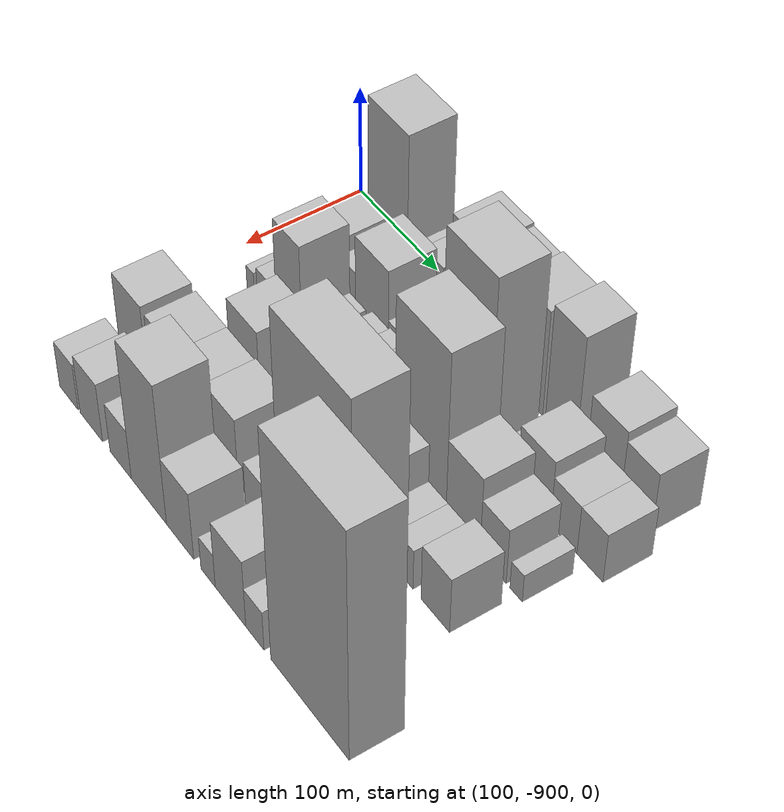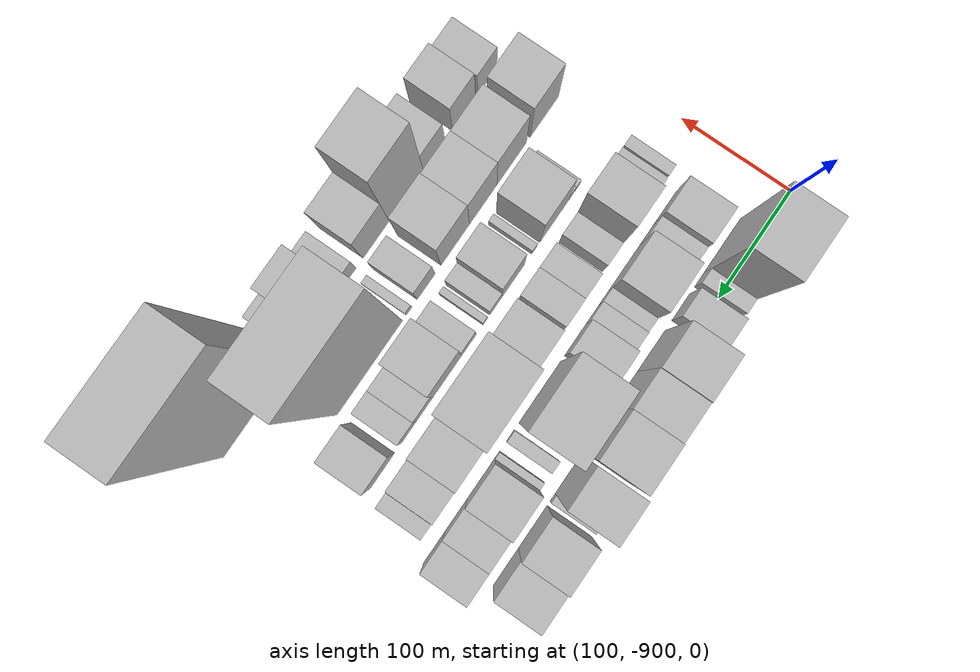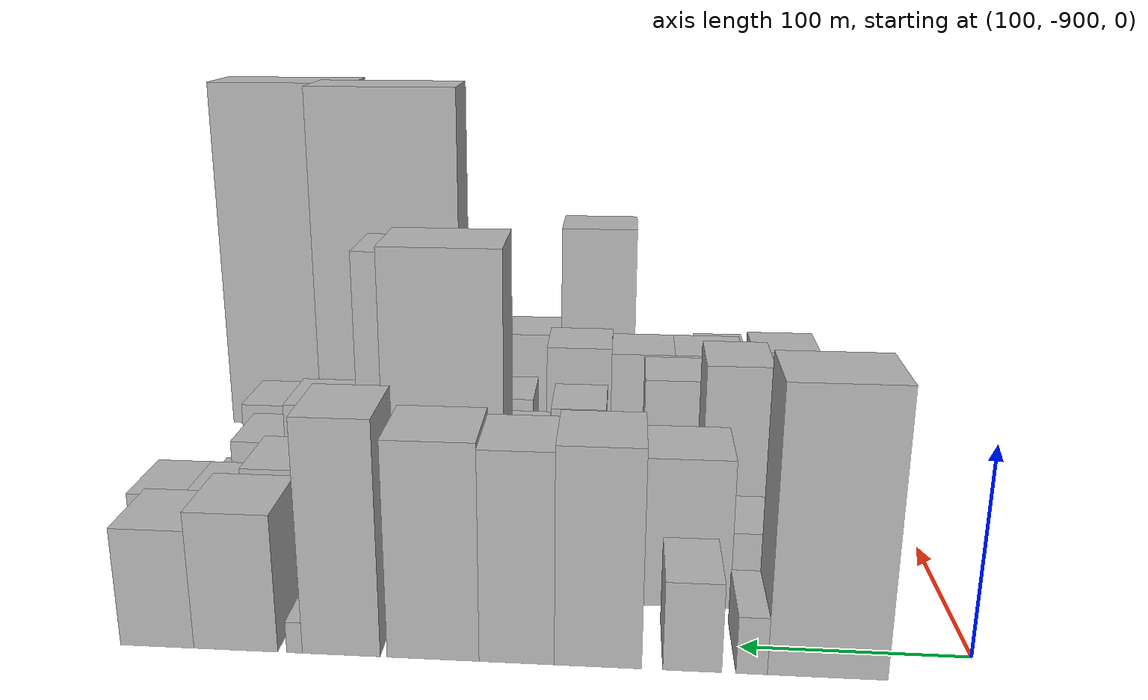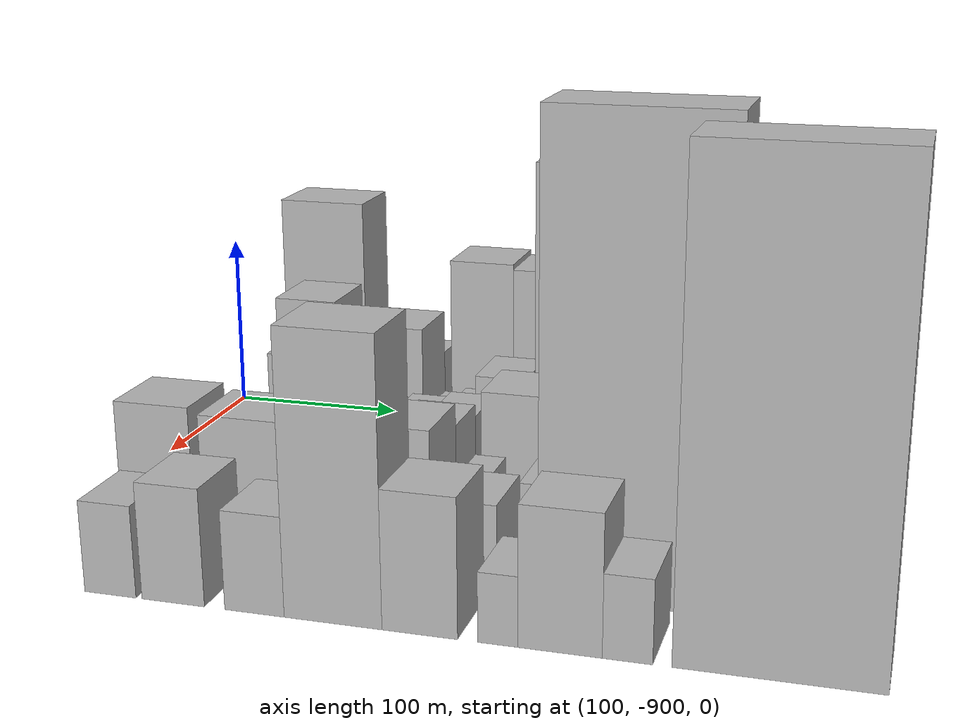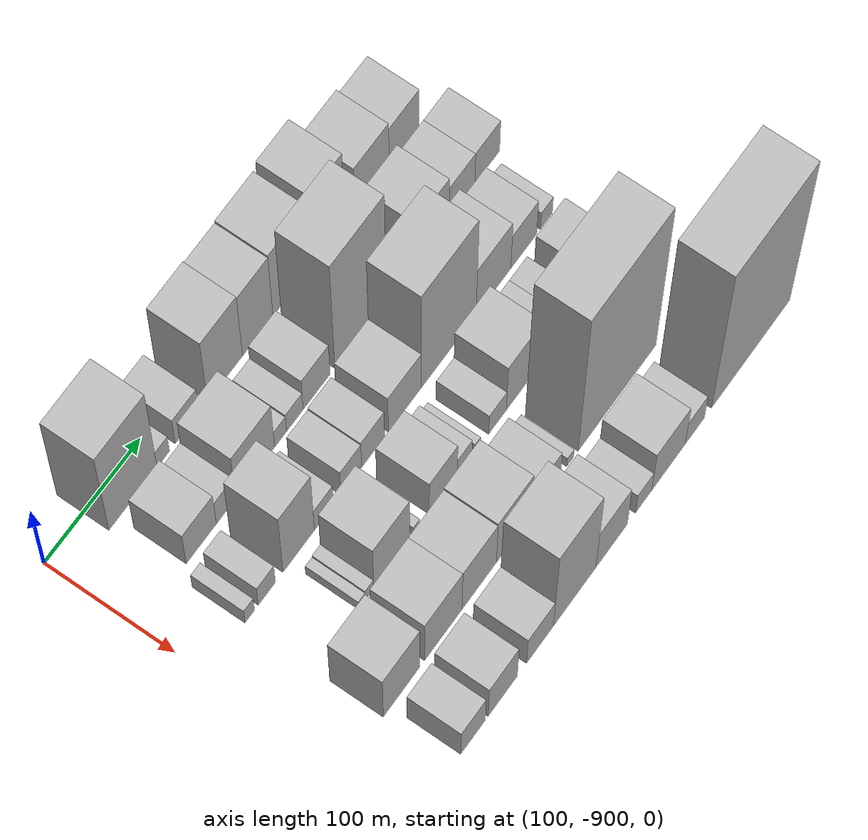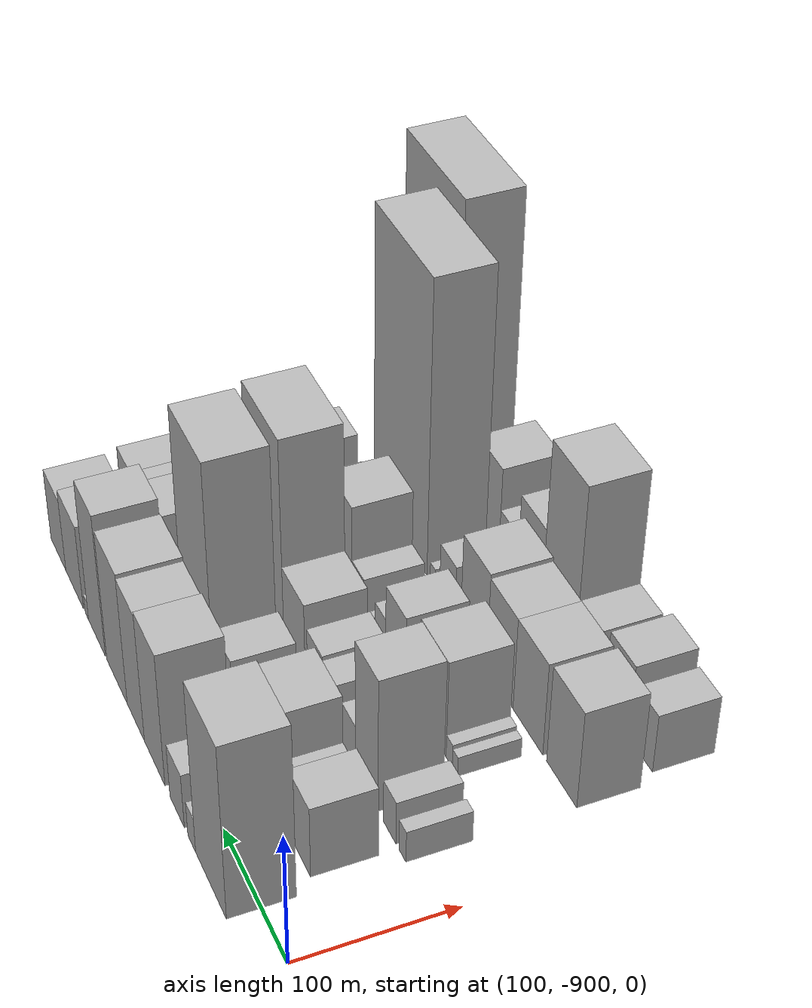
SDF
<sdf version="1.6">
 <world name="default">
  <model name="building_1">
   <static>1</static>
   <pose>100.0000 -834.8855 0 0.000000 0.000000 0.000000</pose>
   <link name="link">
    <pose>0 0 66.00 0 0 0</pose>
    <collision name="collision"><geometry><box><size>40.0000 50.2289 132.0000</size></box></geometry></collision>
    <visual name="visual">
     <cast_shadows>0</cast_shadows>
     <geometry><box><size>40.0000 50.2289 132.0000</size></box></geometry>
     <material>
      <script>
       <uri>model://HANNAS_wall/materials/scripts</uri>
       <uri>model://HANNAS_wall/materials/textures</uri>
       <name>vrc/HANNAS_wall</name>
      </script>
     </material>
    </visual>
   </link>
  </model>
  <model name="building_2">
   <static>1</static>
   <pose>100.0000 -803.1771 0 0.000000 0.000000 0.000000</pose>
   <link name="link">
    <pose>0 0 13.50 0 0 0</pose>
    <collision name="collision"><geometry><box><size>40.0000 13.1880 27.0000</size></box></geometry></collision>
    <visual name="visual">
     <cast_shadows>0</cast_shadows>
     <geometry><box><size>40.0000 13.1880 27.0000</size></box></geometry>
     <material>
      <script>
       <uri>model://HANNAS_wall/materials/scripts</uri>
       <uri>model://HANNAS_wall/materials/textures</uri>
       <name>vrc/HANNAS_wall</name>
      </script>
     </material>
    </visual>
   </link>
  </model>
  <model name="building_3">
   <static>1</static>
   <pose>100.0000 -778.1001 0 0.000000 0.000000 0.000000</pose>
   <link name="link">
    <pose>0 0 21.00 0 0 0</pose>
    <collision name="collision"><geometry><box><size>40.0000 24.9659 42.0000</size></box></geometry></collision>
    <visual name="visual">
     <cast_shadows>0</cast_shadows>
     <geometry><box><size>40.0000 24.9659 42.0000</size></box></geometry>
     <material>
      <script>
       <uri>model://HANNAS_wall/materials/scripts</uri>
       <uri>model://HANNAS_wall/materials/textures</uri>
       <name>vrc/HANNAS_wall</name>
      </script>
     </material>
    </visual>
   </link>
  </model>
  <model name="building_4">
   <static>1</static>
   <pose>100.0000 -737.8932 0 0.000000 0.000000 0.000000</pose>
   <link name="link">
    <pose>0 0 51.00 0 0 0</pose>
    <collision name="collision"><geometry><box><size>40.0000 37.4479 102.0000</size></box></geometry></collision>
    <visual name="visual">
     <cast_shadows>0</cast_shadows>
     <geometry><box><size>40.0000 37.4479 102.0000</size></box></geometry>
     <material>
      <script>
       <uri>model://HANNAS_wall/materials/scripts</uri>
       <uri>model://HANNAS_wall/materials/textures</uri>
       <name>vrc/HANNAS_wall</name>
      </script>
     </material>
    </visual>
   </link>
  </model>
  <model name="building_5">
   <static>1</static>
   <pose>100.0000 -702.8747 0 0.000000 0.000000 0.000000</pose>
   <link name="link">
    <pose>0 0 49.50 0 0 0</pose>
    <collision name="collision"><geometry><box><size>40.0000 32.5892 99.0000</size></box></geometry></collision>
    <visual name="visual">
     <cast_shadows>0</cast_shadows>
     <geometry><box><size>40.0000 32.5892 99.0000</size></box></geometry>
     <material>
      <script>
       <uri>model://HANNAS_wall/materials/scripts</uri>
       <uri>model://HANNAS_wall/materials/textures</uri>
       <name>vrc/HANNAS_wall</name>
      </script>
     </material>
    </visual>
   </link>
  </model>
  <model name="building_6">
   <static>1</static>
   <pose>100.0000 -666.4119 0 0.000000 0.000000 0.000000</pose>
   <link name="link">
    <pose>0 0 51.00 0 0 0</pose>
    <collision name="collision"><geometry><box><size>40.0000 40.3364 102.0000</size></box></geometry></collision>
    <visual name="visual">
     <cast_shadows>0</cast_shadows>
     <geometry><box><size>40.0000 40.3364 102.0000</size></box></geometry>
     <material>
      <script>
       <uri>model://HANNAS_wall/materials/scripts</uri>
       <uri>model://HANNAS_wall/materials/textures</uri>
       <name>vrc/HANNAS_wall</name>
      </script>
     </material>
    </visual>
   </link>
  </model>
  <model name="building_7">
   <static>1</static>
   <pose>100.0000 -625.9581 0 0.000000 0.000000 0.000000</pose>
   <link name="link">
    <pose>0 0 55.50 0 0 0</pose>
    <collision name="collision"><geometry><box><size>40.0000 34.5713 111.0000</size></box></geometry></collision>
    <visual name="visual">
     <cast_shadows>0</cast_shadows>
     <geometry><box><size>40.0000 34.5713 111.0000</size></box></geometry>
     <material>
      <script>
       <uri>model://HANNAS_wall/materials/scripts</uri>
       <uri>model://HANNAS_wall/materials/textures</uri>
       <name>vrc/HANNAS_wall</name>
      </script>
     </material>
    </visual>
   </link>
  </model>
  <model name="building_8">
   <static>1</static>
   <pose>100.0000 -605.1786 0 0.000000 0.000000 0.000000</pose>
   <link name="link">
    <pose>0 0 7.50 0 0 0</pose>
    <collision name="collision"><geometry><box><size>40.0000 6.9877 15.0000</size></box></geometry></collision>
    <visual name="visual">
     <cast_shadows>0</cast_shadows>
     <geometry><box><size>40.0000 6.9877 15.0000</size></box></geometry>
     <material>
      <script>
       <uri>model://HANNAS_wall/materials/scripts</uri>
       <uri>model://HANNAS_wall/materials/textures</uri>
       <name>vrc/HANNAS_wall</name>
      </script>
     </material>
    </visual>
   </link>
  </model>
  <model name="building_9">
   <static>1</static>
   <pose>100.0000 -578.8045 0 0.000000 0.000000 0.000000</pose>
   <link name="link">
    <pose>0 0 33.00 0 0 0</pose>
    <collision name="collision"><geometry><box><size>40.0000 37.7605 66.0000</size></box></geometry></collision>
    <visual name="visual">
     <cast_shadows>0</cast_shadows>
     <geometry><box><size>40.0000 37.7605 66.0000</size></box></geometry>
     <material>
      <script>
       <uri>model://HANNAS_wall/materials/scripts</uri>
       <uri>model://HANNAS_wall/materials/textures</uri>
       <name>vrc/HANNAS_wall</name>
      </script>
     </material>
    </visual>
   </link>
  </model>
  <model name="building_10">
   <static>1</static>
   <pose>100.0000 -543.2496 0 0.000000 0.000000 0.000000</pose>
   <link name="link">
    <pose>0 0 28.50 0 0 0</pose>
    <collision name="collision"><geometry><box><size>40.0000 33.3492 57.0000</size></box></geometry></collision>
    <visual name="visual">
     <cast_shadows>0</cast_shadows>
     <geometry><box><size>40.0000 33.3492 57.0000</size></box></geometry>
     <material>
      <script>
       <uri>model://HANNAS_wall/materials/scripts</uri>
       <uri>model://HANNAS_wall/materials/textures</uri>
       <name>vrc/HANNAS_wall</name>
      </script>
     </material>
    </visual>
   </link>
  </model>
  <model name="building_52">
   <static>1</static>
   <pose>152.0000 -834.2373 0 0.000000 0.000000 0.000000</pose>
   <link name="link">
    <pose>0 0 27.00 0 0 0</pose>
    <collision name="collision"><geometry><box><size>40.0000 31.5254 54.0000</size></box></geometry></collision>
    <visual name="visual">
     <cast_shadows>0</cast_shadows>
     <geometry><box><size>40.0000 31.5254 54.0000</size></box></geometry>
     <material>
      <script>
       <uri>model://HANNAS_wall/materials/scripts</uri>
       <uri>model://HANNAS_wall/materials/textures</uri>
       <name>vrc/HANNAS_wall</name>
      </script>
     </material>
    </visual>
   </link>
  </model>
  <model name="building_53">
   <static>1</static>
   <pose>152.0000 -808.3880 0 0.000000 0.000000 0.000000</pose>
   <link name="link">
    <pose>0 0 19.50 0 0 0</pose>
    <collision name="collision"><geometry><box><size>40.0000 20.1733 39.0000</size></box></geometry></collision>
    <visual name="visual">
     <cast_shadows>0</cast_shadows>
     <geometry><box><size>40.0000 20.1733 39.0000</size></box></geometry>
     <material>
      <script>
       <uri>model://HANNAS_wall/materials/scripts</uri>
       <uri>model://HANNAS_wall/materials/textures</uri>
       <name>vrc/HANNAS_wall</name>
      </script>
     </material>
    </visual>
   </link>
  </model>
  <model name="building_54">
   <static>1</static>
   <pose>152.0000 -777.6099 0 0.000000 0.000000 0.000000</pose>
   <link name="link">
    <pose>0 0 37.50 0 0 0</pose>
    <collision name="collision"><geometry><box><size>40.0000 41.3828 75.0000</size></box></geometry></collision>
    <visual name="visual">
     <cast_shadows>0</cast_shadows>
     <geometry><box><size>40.0000 41.3828 75.0000</size></box></geometry>
     <material>
      <script>
       <uri>model://HANNAS_wall/materials/scripts</uri>
       <uri>model://HANNAS_wall/materials/textures</uri>
       <name>vrc/HANNAS_wall</name>
      </script>
     </material>
    </visual>
   </link>
  </model>
  <model name="building_55">
   <static>1</static>
   <pose>152.0000 -750.5487 0 0.000000 0.000000 0.000000</pose>
   <link name="link">
    <pose>0 0 13.50 0 0 0</pose>
    <collision name="collision"><geometry><box><size>40.0000 12.7398 27.0000</size></box></geometry></collision>
    <visual name="visual">
     <cast_shadows>0</cast_shadows>
     <geometry><box><size>40.0000 12.7398 27.0000</size></box></geometry>
     <material>
      <script>
       <uri>model://HANNAS_wall/materials/scripts</uri>
       <uri>model://HANNAS_wall/materials/textures</uri>
       <name>vrc/HANNAS_wall</name>
      </script>
     </material>
    </visual>
   </link>
  </model>
  <model name="building_56">
   <static>1</static>
   <pose>152.0000 -735.2971 0 0.000000 0.000000 0.000000</pose>
   <link name="link">
    <pose>0 0 15.00 0 0 0</pose>
    <collision name="collision"><geometry><box><size>40.0000 17.7633 30.0000</size></box></geometry></collision>
    <visual name="visual">
     <cast_shadows>0</cast_shadows>
     <geometry><box><size>40.0000 17.7633 30.0000</size></box></geometry>
     <material>
      <script>
       <uri>model://HANNAS_wall/materials/scripts</uri>
       <uri>model://HANNAS_wall/materials/textures</uri>
       <name>vrc/HANNAS_wall</name>
      </script>
     </material>
    </visual>
   </link>
  </model>
  <model name="building_57">
   <static>1</static>
   <pose>152.0000 -711.9528 0 0.000000 0.000000 0.000000</pose>
   <link name="link">
    <pose>0 0 25.50 0 0 0</pose>
    <collision name="collision"><geometry><box><size>40.0000 28.9254 51.0000</size></box></geometry></collision>
    <visual name="visual">
     <cast_shadows>0</cast_shadows>
     <geometry><box><size>40.0000 28.9254 51.0000</size></box></geometry>
     <material>
      <script>
       <uri>model://HANNAS_wall/materials/scripts</uri>
       <uri>model://HANNAS_wall/materials/textures</uri>
       <name>vrc/HANNAS_wall</name>
      </script>
     </material>
    </visual>
   </link>
  </model>
  <model name="building_58">
   <static>1</static>
   <pose>152.0000 -664.3940 0 0.000000 0.000000 0.000000</pose>
   <link name="link">
    <pose>0 0 85.50 0 0 0</pose>
    <collision name="collision"><geometry><box><size>40.0000 56.1921 171.0000</size></box></geometry></collision>
    <visual name="visual">
     <cast_shadows>0</cast_shadows>
     <geometry><box><size>40.0000 56.1921 171.0000</size></box></geometry>
     <material>
      <script>
       <uri>model://HANNAS_wall/materials/scripts</uri>
       <uri>model://HANNAS_wall/materials/textures</uri>
       <name>vrc/HANNAS_wall</name>
      </script>
     </material>
    </visual>
   </link>
  </model>
  <model name="building_59">
   <static>1</static>
   <pose>152.0000 -625.0983 0 0.000000 0.000000 0.000000</pose>
   <link name="link">
    <pose>0 0 10.50 0 0 0</pose>
    <collision name="collision"><geometry><box><size>40.0000 10.3992 21.0000</size></box></geometry></collision>
    <visual name="visual">
     <cast_shadows>0</cast_shadows>
     <geometry><box><size>40.0000 10.3992 21.0000</size></box></geometry>
     <material>
      <script>
       <uri>model://HANNAS_wall/materials/scripts</uri>
       <uri>model://HANNAS_wall/materials/textures</uri>
       <name>vrc/HANNAS_wall</name>
      </script>
     </material>
    </visual>
   </link>
  </model>
  <model name="building_60">
   <static>1</static>
   <pose>152.0000 -607.7849 0 0.000000 0.000000 0.000000</pose>
   <link name="link">
    <pose>0 0 7.50 0 0 0</pose>
    <collision name="collision"><geometry><box><size>40.0000 6.2277 15.0000</size></box></geometry></collision>
    <visual name="visual">
     <cast_shadows>0</cast_shadows>
     <geometry><box><size>40.0000 6.2277 15.0000</size></box></geometry>
     <material>
      <script>
       <uri>model://HANNAS_wall/materials/scripts</uri>
       <uri>model://HANNAS_wall/materials/textures</uri>
       <name>vrc/HANNAS_wall</name>
      </script>
     </material>
    </visual>
   </link>
  </model>
  <model name="building_61">
   <static>1</static>
   <pose>152.0000 -586.1043 0 0.000000 0.000000 0.000000</pose>
   <link name="link">
    <pose>0 0 31.50 0 0 0</pose>
    <collision name="collision"><geometry><box><size>40.0000 37.1334 63.0000</size></box></geometry></collision>
    <visual name="visual">
     <cast_shadows>0</cast_shadows>
     <geometry><box><size>40.0000 37.1334 63.0000</size></box></geometry>
     <material>
      <script>
       <uri>model://HANNAS_wall/materials/scripts</uri>
       <uri>model://HANNAS_wall/materials/textures</uri>
       <name>vrc/HANNAS_wall</name>
      </script>
     </material>
    </visual>
   </link>
  </model>
  <model name="building_62">
   <static>1</static>
   <pose>152.0000 -553.2038 0 0.000000 0.000000 0.000000</pose>
   <link name="link">
    <pose>0 0 24.00 0 0 0</pose>
    <collision name="collision"><geometry><box><size>40.0000 28.6676 48.0000</size></box></geometry></collision>
    <visual name="visual">
     <cast_shadows>0</cast_shadows>
     <geometry><box><size>40.0000 28.6676 48.0000</size></box></geometry>
     <material>
      <script>
       <uri>model://HANNAS_wall/materials/scripts</uri>
       <uri>model://HANNAS_wall/materials/textures</uri>
       <name>vrc/HANNAS_wall</name>
      </script>
     </material>
    </visual>
   </link>
  </model>
  <model name="building_63">
   <static>1</static>
   <pose>152.0000 -525.1221 0 0.000000 0.000000 0.000000</pose>
   <link name="link">
    <pose>0 0 24.00 0 0 0</pose>
    <collision name="collision"><geometry><box><size>40.0000 27.4958 48.0000</size></box></geometry></collision>
    <visual name="visual">
     <cast_shadows>0</cast_shadows>
     <geometry><box><size>40.0000 27.4958 48.0000</size></box></geometry>
     <material>
      <script>
       <uri>model://HANNAS_wall/materials/scripts</uri>
       <uri>model://HANNAS_wall/materials/textures</uri>
       <name>vrc/HANNAS_wall</name>
      </script>
     </material>
    </visual>
   </link>
  </model>
  <model name="building_103">
   <static>1</static>
   <pose>204.0000 -855.0192 0 0.000000 0.000000 0.000000</pose>
   <link name="link">
    <pose>0 0 12.00 0 0 0</pose>
    <collision name="collision"><geometry><box><size>40.0000 9.9615 24.0000</size></box></geometry></collision>
    <visual name="visual">
     <cast_shadows>0</cast_shadows>
     <geometry><box><size>40.0000 9.9615 24.0000</size></box></geometry>
     <material>
      <script>
       <uri>model://HANNAS_wall/materials/scripts</uri>
       <uri>model://HANNAS_wall/materials/textures</uri>
       <name>vrc/HANNAS_wall</name>
      </script>
     </material>
    </visual>
   </link>
  </model>
  <model name="building_104">
   <static>1</static>
   <pose>204.0000 -837.0740 0 0.000000 0.000000 0.000000</pose>
   <link name="link">
    <pose>0 0 16.50 0 0 0</pose>
    <collision name="collision"><geometry><box><size>40.0000 17.9289 33.0000</size></box></geometry></collision>
    <visual name="visual">
     <cast_shadows>0</cast_shadows>
     <geometry><box><size>40.0000 17.9289 33.0000</size></box></geometry>
     <material>
      <script>
       <uri>model://HANNAS_wall/materials/scripts</uri>
       <uri>model://HANNAS_wall/materials/textures</uri>
       <name>vrc/HANNAS_wall</name>
      </script>
     </material>
    </visual>
   </link>
  </model>
  <model name="building_105">
   <static>1</static>
   <pose>204.0000 -803.5136 0 0.000000 0.000000 0.000000</pose>
   <link name="link">
    <pose>0 0 51.00 0 0 0</pose>
    <collision name="collision"><geometry><box><size>40.0000 33.1919 102.0000</size></box></geometry></collision>
    <visual name="visual">
     <cast_shadows>0</cast_shadows>
     <geometry><box><size>40.0000 33.1919 102.0000</size></box></geometry>
     <material>
      <script>
       <uri>model://HANNAS_wall/materials/scripts</uri>
       <uri>model://HANNAS_wall/materials/textures</uri>
       <name>vrc/HANNAS_wall</name>
      </script>
     </material>
    </visual>
   </link>
  </model>
  <model name="building_106">
   <static>1</static>
   <pose>204.0000 -776.7691 0 0.000000 0.000000 0.000000</pose>
   <link name="link">
    <pose>0 0 18.00 0 0 0</pose>
    <collision name="collision"><geometry><box><size>40.0000 20.2972 36.0000</size></box></geometry></collision>
    <visual name="visual">
     <cast_shadows>0</cast_shadows>
     <geometry><box><size>40.0000 20.2972 36.0000</size></box></geometry>
     <material>
      <script>
       <uri>model://HANNAS_wall/materials/scripts</uri>
       <uri>model://HANNAS_wall/materials/textures</uri>
       <name>vrc/HANNAS_wall</name>
      </script>
     </material>
    </visual>
   </link>
  </model>
  <model name="building_107">
   <static>1</static>
   <pose>204.0000 -747.5770 0 0.000000 0.000000 0.000000</pose>
   <link name="link">
    <pose>0 0 21.00 0 0 0</pose>
    <collision name="collision"><geometry><box><size>40.0000 22.0869 42.0000</size></box></geometry></collision>
    <visual name="visual">
     <cast_shadows>0</cast_shadows>
     <geometry><box><size>40.0000 22.0869 42.0000</size></box></geometry>
     <material>
      <script>
       <uri>model://HANNAS_wall/materials/scripts</uri>
       <uri>model://HANNAS_wall/materials/textures</uri>
       <name>vrc/HANNAS_wall</name>
      </script>
     </material>
    </visual>
   </link>
  </model>
  <model name="building_108">
   <static>1</static>
   <pose>204.0000 -724.1428 0 0.000000 0.000000 0.000000</pose>
   <link name="link">
    <pose>0 0 22.50 0 0 0</pose>
    <collision name="collision"><geometry><box><size>40.0000 24.7816 45.0000</size></box></geometry></collision>
    <visual name="visual">
     <cast_shadows>0</cast_shadows>
     <geometry><box><size>40.0000 24.7816 45.0000</size></box></geometry>
     <material>
      <script>
       <uri>model://HANNAS_wall/materials/scripts</uri>
       <uri>model://HANNAS_wall/materials/textures</uri>
       <name>vrc/HANNAS_wall</name>
      </script>
     </material>
    </visual>
   </link>
  </model>
  <model name="building_109">
   <static>1</static>
   <pose>204.0000 -689.8657 0 0.000000 0.000000 0.000000</pose>
   <link name="link">
    <pose>0 0 30.00 0 0 0</pose>
    <collision name="collision"><geometry><box><size>40.0000 35.7724 60.0000</size></box></geometry></collision>
    <visual name="visual">
     <cast_shadows>0</cast_shadows>
     <geometry><box><size>40.0000 35.7724 60.0000</size></box></geometry>
     <material>
      <script>
       <uri>model://HANNAS_wall/materials/scripts</uri>
       <uri>model://HANNAS_wall/materials/textures</uri>
       <name>vrc/HANNAS_wall</name>
      </script>
     </material>
    </visual>
   </link>
  </model>
  <model name="building_110">
   <static>1</static>
   <pose>204.0000 -642.0221 0 0.000000 0.000000 0.000000</pose>
   <link name="link">
    <pose>0 0 78.00 0 0 0</pose>
    <collision name="collision"><geometry><box><size>40.0000 59.9149 156.0000</size></box></geometry></collision>
    <visual name="visual">
     <cast_shadows>0</cast_shadows>
     <geometry><box><size>40.0000 59.9149 156.0000</size></box></geometry>
     <material>
      <script>
       <uri>model://HANNAS_wall/materials/scripts</uri>
       <uri>model://HANNAS_wall/materials/textures</uri>
       <name>vrc/HANNAS_wall</name>
      </script>
     </material>
    </visual>
   </link>
  </model>
  <model name="building_111">
   <static>1</static>
   <pose>204.0000 -592.9257 0 0.000000 0.000000 0.000000</pose>
   <link name="link">
    <pose>0 0 37.50 0 0 0</pose>
    <collision name="collision"><geometry><box><size>40.0000 38.2778 75.0000</size></box></geometry></collision>
    <visual name="visual">
     <cast_shadows>0</cast_shadows>
     <geometry><box><size>40.0000 38.2778 75.0000</size></box></geometry>
     <material>
      <script>
       <uri>model://HANNAS_wall/materials/scripts</uri>
       <uri>model://HANNAS_wall/materials/textures</uri>
       <name>vrc/HANNAS_wall</name>
      </script>
     </material>
    </visual>
   </link>
  </model>
  <model name="building_112">
   <static>1</static>
   <pose>204.0000 -559.3211 0 0.000000 0.000000 0.000000</pose>
   <link name="link">
    <pose>0 0 27.00 0 0 0</pose>
    <collision name="collision"><geometry><box><size>40.0000 28.9314 54.0000</size></box></geometry></collision>
    <visual name="visual">
     <cast_shadows>0</cast_shadows>
     <geometry><box><size>40.0000 28.9314 54.0000</size></box></geometry>
     <material>
      <script>
       <uri>model://HANNAS_wall/materials/scripts</uri>
       <uri>model://HANNAS_wall/materials/textures</uri>
       <name>vrc/HANNAS_wall</name>
      </script>
     </material>
    </visual>
   </link>
  </model>
  <model name="building_113">
   <static>1</static>
   <pose>204.0000 -534.1508 0 0.000000 0.000000 0.000000</pose>
   <link name="link">
    <pose>0 0 13.50 0 0 0</pose>
    <collision name="collision"><geometry><box><size>40.0000 13.4092 27.0000</size></box></geometry></collision>
    <visual name="visual">
     <cast_shadows>0</cast_shadows>
     <geometry><box><size>40.0000 13.4092 27.0000</size></box></geometry>
     <material>
      <script>
       <uri>model://HANNAS_wall/materials/scripts</uri>
       <uri>model://HANNAS_wall/materials/textures</uri>
       <name>vrc/HANNAS_wall</name>
      </script>
     </material>
    </visual>
   </link>
  </model>
  <model name="building_155">
   <static>1</static>
   <pose>256.0000 -809.1933 0 0.000000 0.000000 0.000000</pose>
   <link name="link">
    <pose>0 0 7.50 0 0 0</pose>
    <collision name="collision"><geometry><box><size>40.0000 7.2045 15.0000</size></box></geometry></collision>
    <visual name="visual">
     <cast_shadows>0</cast_shadows>
     <geometry><box><size>40.0000 7.2045 15.0000</size></box></geometry>
     <material>
      <script>
       <uri>model://HANNAS_wall/materials/scripts</uri>
       <uri>model://HANNAS_wall/materials/textures</uri>
       <name>vrc/HANNAS_wall</name>
      </script>
     </material>
    </visual>
   </link>
  </model>
  <model name="building_156">
   <static>1</static>
   <pose>256.0000 -801.1791 0 0.000000 0.000000 0.000000</pose>
   <link name="link">
    <pose>0 0 9.00 0 0 0</pose>
    <collision name="collision"><geometry><box><size>40.0000 8.8240 18.0000</size></box></geometry></collision>
    <visual name="visual">
     <cast_shadows>0</cast_shadows>
     <geometry><box><size>40.0000 8.8240 18.0000</size></box></geometry>
     <material>
      <script>
       <uri>model://HANNAS_wall/materials/scripts</uri>
       <uri>model://HANNAS_wall/materials/textures</uri>
       <name>vrc/HANNAS_wall</name>
      </script>
     </material>
    </visual>
   </link>
  </model>
  <model name="building_157">
   <static>1</static>
   <pose>256.0000 -777.5216 0 0.000000 0.000000 0.000000</pose>
   <link name="link">
    <pose>0 0 37.50 0 0 0</pose>
    <collision name="collision"><geometry><box><size>40.0000 38.4909 75.0000</size></box></geometry></collision>
    <visual name="visual">
     <cast_shadows>0</cast_shadows>
     <geometry><box><size>40.0000 38.4909 75.0000</size></box></geometry>
     <material>
      <script>
       <uri>model://HANNAS_wall/materials/scripts</uri>
       <uri>model://HANNAS_wall/materials/textures</uri>
       <name>vrc/HANNAS_wall</name>
      </script>
     </material>
    </visual>
   </link>
  </model>
  <model name="building_158">
   <static>1</static>
   <pose>256.0000 -750.8480 0 0.000000 0.000000 0.000000</pose>
   <link name="link">
    <pose>0 0 7.50 0 0 0</pose>
    <collision name="collision"><geometry><box><size>40.0000 6.8562 15.0000</size></box></geometry></collision>
    <visual name="visual">
     <cast_shadows>0</cast_shadows>
     <geometry><box><size>40.0000 6.8562 15.0000</size></box></geometry>
     <material>
      <script>
       <uri>model://HANNAS_wall/materials/scripts</uri>
       <uri>model://HANNAS_wall/materials/textures</uri>
       <name>vrc/HANNAS_wall</name>
      </script>
     </material>
    </visual>
   </link>
  </model>
  <model name="building_159">
   <static>1</static>
   <pose>256.0000 -722.2697 0 0.000000 0.000000 0.000000</pose>
   <link name="link">
    <pose>0 0 28.50 0 0 0</pose>
    <collision name="collision"><geometry><box><size>40.0000 30.3005 57.0000</size></box></geometry></collision>
    <visual name="visual">
     <cast_shadows>0</cast_shadows>
     <geometry><box><size>40.0000 30.3005 57.0000</size></box></geometry>
     <material>
      <script>
       <uri>model://HANNAS_wall/materials/scripts</uri>
       <uri>model://HANNAS_wall/materials/textures</uri>
       <name>vrc/HANNAS_wall</name>
      </script>
     </material>
    </visual>
   </link>
  </model>
  <model name="building_160">
   <static>1</static>
   <pose>256.0000 -699.0476 0 0.000000 0.000000 0.000000</pose>
   <link name="link">
    <pose>0 0 15.00 0 0 0</pose>
    <collision name="collision"><geometry><box><size>40.0000 16.1436 30.0000</size></box></geometry></collision>
    <visual name="visual">
     <cast_shadows>0</cast_shadows>
     <geometry><box><size>40.0000 16.1436 30.0000</size></box></geometry>
     <material>
      <script>
       <uri>model://HANNAS_wall/materials/scripts</uri>
       <uri>model://HANNAS_wall/materials/textures</uri>
       <name>vrc/HANNAS_wall</name>
      </script>
     </material>
    </visual>
   </link>
  </model>
  <model name="building_161">
   <static>1</static>
   <pose>256.0000 -684.9616 0 0.000000 0.000000 0.000000</pose>
   <link name="link">
    <pose>0 0 7.50 0 0 0</pose>
    <collision name="collision"><geometry><box><size>40.0000 6.0284 15.0000</size></box></geometry></collision>
    <visual name="visual">
     <cast_shadows>0</cast_shadows>
     <geometry><box><size>40.0000 6.0284 15.0000</size></box></geometry>
     <material>
      <script>
       <uri>model://HANNAS_wall/materials/scripts</uri>
       <uri>model://HANNAS_wall/materials/textures</uri>
       <name>vrc/HANNAS_wall</name>
      </script>
     </material>
    </visual>
   </link>
  </model>
  <model name="building_162">
   <static>1</static>
   <pose>256.0000 -663.3289 0 0.000000 0.000000 0.000000</pose>
   <link name="link">
    <pose>0 0 16.50 0 0 0</pose>
    <collision name="collision"><geometry><box><size>40.0000 19.2370 33.0000</size></box></geometry></collision>
    <visual name="visual">
     <cast_shadows>0</cast_shadows>
     <geometry><box><size>40.0000 19.2370 33.0000</size></box></geometry>
     <material>
      <script>
       <uri>model://HANNAS_wall/materials/scripts</uri>
       <uri>model://HANNAS_wall/materials/textures</uri>
       <name>vrc/HANNAS_wall</name>
      </script>
     </material>
    </visual>
   </link>
  </model>
  <model name="building_163">
   <static>1</static>
   <pose>256.0000 -634.7234 0 0.000000 0.000000 0.000000</pose>
   <link name="link">
    <pose>0 0 37.50 0 0 0</pose>
    <collision name="collision"><geometry><box><size>40.0000 37.9740 75.0000</size></box></geometry></collision>
    <visual name="visual">
     <cast_shadows>0</cast_shadows>
     <geometry><box><size>40.0000 37.9740 75.0000</size></box></geometry>
     <material>
      <script>
       <uri>model://HANNAS_wall/materials/scripts</uri>
       <uri>model://HANNAS_wall/materials/textures</uri>
       <name>vrc/HANNAS_wall</name>
      </script>
     </material>
    </visual>
   </link>
  </model>
  <model name="building_164">
   <static>1</static>
   <pose>256.0000 -604.7398 0 0.000000 0.000000 0.000000</pose>
   <link name="link">
    <pose>0 0 19.50 0 0 0</pose>
    <collision name="collision"><geometry><box><size>40.0000 21.9931 39.0000</size></box></geometry></collision>
    <visual name="visual">
     <cast_shadows>0</cast_shadows>
     <geometry><box><size>40.0000 21.9931 39.0000</size></box></geometry>
     <material>
      <script>
       <uri>model://HANNAS_wall/materials/scripts</uri>
       <uri>model://HANNAS_wall/materials/textures</uri>
       <name>vrc/HANNAS_wall</name>
      </script>
     </material>
    </visual>
   </link>
  </model>
  <model name="building_165">
   <static>1</static>
   <pose>256.0000 -583.9676 0 0.000000 0.000000 0.000000</pose>
   <link name="link">
    <pose>0 0 19.50 0 0 0</pose>
    <collision name="collision"><geometry><box><size>40.0000 19.5514 39.0000</size></box></geometry></collision>
    <visual name="visual">
     <cast_shadows>0</cast_shadows>
     <geometry><box><size>40.0000 19.5514 39.0000</size></box></geometry>
     <material>
      <script>
       <uri>model://HANNAS_wall/materials/scripts</uri>
       <uri>model://HANNAS_wall/materials/textures</uri>
       <name>vrc/HANNAS_wall</name>
      </script>
     </material>
    </visual>
   </link>
  </model>
  <model name="building_166">
   <static>1</static>
   <pose>256.0000 -549.3400 0 0.000000 0.000000 0.000000</pose>
   <link name="link">
    <pose>0 0 27.00 0 0 0</pose>
    <collision name="collision"><geometry><box><size>40.0000 31.7039 54.0000</size></box></geometry></collision>
    <visual name="visual">
     <cast_shadows>0</cast_shadows>
     <geometry><box><size>40.0000 31.7039 54.0000</size></box></geometry>
     <material>
      <script>
       <uri>model://HANNAS_wall/materials/scripts</uri>
       <uri>model://HANNAS_wall/materials/textures</uri>
       <name>vrc/HANNAS_wall</name>
      </script>
     </material>
    </visual>
   </link>
  </model>
  <model name="building_209">
   <static>1</static>
   <pose>308.0000 -840.6608 0 0.000000 0.000000 0.000000</pose>
   <link name="link">
    <pose>0 0 37.50 0 0 0</pose>
    <collision name="collision"><geometry><box><size>40.0000 38.6785 75.0000</size></box></geometry></collision>
    <visual name="visual">
     <cast_shadows>0</cast_shadows>
     <geometry><box><size>40.0000 38.6785 75.0000</size></box></geometry>
     <material>
      <script>
       <uri>model://HANNAS_wall/materials/scripts</uri>
       <uri>model://HANNAS_wall/materials/textures</uri>
       <name>vrc/HANNAS_wall</name>
      </script>
     </material>
    </visual>
   </link>
  </model>
  <model name="building_210">
   <static>1</static>
   <pose>308.0000 -796.3526 0 0.000000 0.000000 0.000000</pose>
   <link name="link">
    <pose>0 0 36.00 0 0 0</pose>
    <collision name="collision"><geometry><box><size>40.0000 39.9379 72.0000</size></box></geometry></collision>
    <visual name="visual">
     <cast_shadows>0</cast_shadows>
     <geometry><box><size>40.0000 39.9379 72.0000</size></box></geometry>
     <material>
      <script>
       <uri>model://HANNAS_wall/materials/scripts</uri>
       <uri>model://HANNAS_wall/materials/textures</uri>
       <name>vrc/HANNAS_wall</name>
      </script>
     </material>
    </visual>
   </link>
  </model>
  <model name="building_211">
   <static>1</static>
   <pose>308.0000 -757.8801 0 0.000000 0.000000 0.000000</pose>
   <link name="link">
    <pose>0 0 36.00 0 0 0</pose>
    <collision name="collision"><geometry><box><size>40.0000 37.0070 72.0000</size></box></geometry></collision>
    <visual name="visual">
     <cast_shadows>0</cast_shadows>
     <geometry><box><size>40.0000 37.0070 72.0000</size></box></geometry>
     <material>
      <script>
       <uri>model://HANNAS_wall/materials/scripts</uri>
       <uri>model://HANNAS_wall/materials/textures</uri>
       <name>vrc/HANNAS_wall</name>
      </script>
     </material>
    </visual>
   </link>
  </model>
  <model name="building_212">
   <static>1</static>
   <pose>308.0000 -720.3292 0 0.000000 0.000000 0.000000</pose>
   <link name="link">
    <pose>0 0 37.50 0 0 0</pose>
    <collision name="collision"><geometry><box><size>40.0000 38.0949 75.0000</size></box></geometry></collision>
    <visual name="visual">
     <cast_shadows>0</cast_shadows>
     <geometry><box><size>40.0000 38.0949 75.0000</size></box></geometry>
     <material>
      <script>
       <uri>model://HANNAS_wall/materials/scripts</uri>
       <uri>model://HANNAS_wall/materials/textures</uri>
       <name>vrc/HANNAS_wall</name>
      </script>
     </material>
    </visual>
   </link>
  </model>
  <model name="building_213">
   <static>1</static>
   <pose>308.0000 -681.4227 0 0.000000 0.000000 0.000000</pose>
   <link name="link">
    <pose>0 0 21.00 0 0 0</pose>
    <collision name="collision"><geometry><box><size>40.0000 23.7180 42.0000</size></box></geometry></collision>
    <visual name="visual">
     <cast_shadows>0</cast_shadows>
     <geometry><box><size>40.0000 23.7180 42.0000</size></box></geometry>
     <material>
      <script>
       <uri>model://HANNAS_wall/materials/scripts</uri>
       <uri>model://HANNAS_wall/materials/textures</uri>
       <name>vrc/HANNAS_wall</name>
      </script>
     </material>
    </visual>
   </link>
  </model>
  <model name="building_214">
   <static>1</static>
   <pose>308.0000 -658.8391 0 0.000000 0.000000 0.000000</pose>
   <link name="link">
    <pose>0 0 7.50 0 0 0</pose>
    <collision name="collision"><geometry><box><size>40.0000 7.4493 15.0000</size></box></geometry></collision>
    <visual name="visual">
     <cast_shadows>0</cast_shadows>
     <geometry><box><size>40.0000 7.4493 15.0000</size></box></geometry>
     <material>
      <script>
       <uri>model://HANNAS_wall/materials/scripts</uri>
       <uri>model://HANNAS_wall/materials/textures</uri>
       <name>vrc/HANNAS_wall</name>
      </script>
     </material>
    </visual>
   </link>
  </model>
  <model name="building_215">
   <static>1</static>
   <pose>308.0000 -606.9927 0 0.000000 0.000000 0.000000</pose>
   <link name="link">
    <pose>0 0 112.50 0 0 0</pose>
    <collision name="collision"><geometry><box><size>40.0000 86.2434 225.0000</size></box></geometry></collision>
    <visual name="visual">
     <cast_shadows>0</cast_shadows>
     <geometry><box><size>40.0000 86.2434 225.0000</size></box></geometry>
     <material>
      <script>
       <uri>model://HANNAS_wall/materials/scripts</uri>
       <uri>model://HANNAS_wall/materials/textures</uri>
       <name>vrc/HANNAS_wall</name>
      </script>
     </material>
    </visual>
   </link>
  </model>
  <model name="building_252">
   <static>1</static>
   <pose>360.0000 -838.9835 0 0.000000 0.000000 0.000000</pose>
   <link name="link">
    <pose>0 0 22.50 0 0 0</pose>
    <collision name="collision"><geometry><box><size>40.0000 26.0330 45.0000</size></box></geometry></collision>
    <visual name="visual">
     <cast_shadows>0</cast_shadows>
     <geometry><box><size>40.0000 26.0330 45.0000</size></box></geometry>
     <material>
      <script>
       <uri>model://HANNAS_wall/materials/scripts</uri>
       <uri>model://HANNAS_wall/materials/textures</uri>
       <name>vrc/HANNAS_wall</name>
      </script>
     </material>
    </visual>
   </link>
  </model>
  <model name="building_253">
   <static>1</static>
   <pose>360.0000 -807.3779 0 0.000000 0.000000 0.000000</pose>
   <link name="link">
    <pose>0 0 28.50 0 0 0</pose>
    <collision name="collision"><geometry><box><size>40.0000 31.1782 57.0000</size></box></geometry></collision>
    <visual name="visual">
     <cast_shadows>0</cast_shadows>
     <geometry><box><size>40.0000 31.1782 57.0000</size></box></geometry>
     <material>
      <script>
       <uri>model://HANNAS_wall/materials/scripts</uri>
       <uri>model://HANNAS_wall/materials/textures</uri>
       <name>vrc/HANNAS_wall</name>
      </script>
     </material>
    </visual>
   </link>
  </model>
  <model name="building_254">
   <static>1</static>
   <pose>360.0000 -767.4085 0 0.000000 0.000000 0.000000</pose>
   <link name="link">
    <pose>0 0 24.00 0 0 0</pose>
    <collision name="collision"><geometry><box><size>40.0000 28.7605 48.0000</size></box></geometry></collision>
    <visual name="visual">
     <cast_shadows>0</cast_shadows>
     <geometry><box><size>40.0000 28.7605 48.0000</size></box></geometry>
     <material>
      <script>
       <uri>model://HANNAS_wall/materials/scripts</uri>
       <uri>model://HANNAS_wall/materials/textures</uri>
       <name>vrc/HANNAS_wall</name>
      </script>
     </material>
    </visual>
   </link>
  </model>
  <model name="building_255">
   <static>1</static>
   <pose>360.0000 -729.9493 0 0.000000 0.000000 0.000000</pose>
   <link name="link">
    <pose>0 0 67.50 0 0 0</pose>
    <collision name="collision"><geometry><box><size>40.0000 46.1579 135.0000</size></box></geometry></collision>
    <visual name="visual">
     <cast_shadows>0</cast_shadows>
     <geometry><box><size>40.0000 46.1579 135.0000</size></box></geometry>
     <material>
      <script>
       <uri>model://HANNAS_wall/materials/scripts</uri>
       <uri>model://HANNAS_wall/materials/textures</uri>
       <name>vrc/HANNAS_wall</name>
      </script>
     </material>
    </visual>
   </link>
  </model>
  <model name="building_256">
   <static>1</static>
   <pose>360.0000 -689.5161 0 0.000000 0.000000 0.000000</pose>
   <link name="link">
    <pose>0 0 33.00 0 0 0</pose>
    <collision name="collision"><geometry><box><size>40.0000 34.7086 66.0000</size></box></geometry></collision>
    <visual name="visual">
     <cast_shadows>0</cast_shadows>
     <geometry><box><size>40.0000 34.7086 66.0000</size></box></geometry>
     <material>
      <script>
       <uri>model://HANNAS_wall/materials/scripts</uri>
       <uri>model://HANNAS_wall/materials/textures</uri>
       <name>vrc/HANNAS_wall</name>
      </script>
     </material>
    </visual>
   </link>
  </model>
  <model name="building_257">
   <static>1</static>
   <pose>360.0000 -654.2346 0 0.000000 0.000000 0.000000</pose>
   <link name="link">
    <pose>0 0 16.50 0 0 0</pose>
    <collision name="collision"><geometry><box><size>40.0000 17.8544 33.0000</size></box></geometry></collision>
    <visual name="visual">
     <cast_shadows>0</cast_shadows>
     <geometry><box><size>40.0000 17.8544 33.0000</size></box></geometry>
     <material>
      <script>
       <uri>model://HANNAS_wall/materials/scripts</uri>
       <uri>model://HANNAS_wall/materials/textures</uri>
       <name>vrc/HANNAS_wall</name>
      </script>
     </material>
    </visual>
   </link>
  </model>
  <model name="building_258">
   <static>1</static>
   <pose>360.0000 -626.7936 0 0.000000 0.000000 0.000000</pose>
   <link name="link">
    <pose>0 0 33.00 0 0 0</pose>
    <collision name="collision"><geometry><box><size>40.0000 37.0275 66.0000</size></box></geometry></collision>
    <visual name="visual">
     <cast_shadows>0</cast_shadows>
     <geometry><box><size>40.0000 37.0275 66.0000</size></box></geometry>
     <material>
      <script>
       <uri>model://HANNAS_wall/materials/scripts</uri>
       <uri>model://HANNAS_wall/materials/textures</uri>
       <name>vrc/HANNAS_wall</name>
      </script>
     </material>
    </visual>
   </link>
  </model>
  <model name="building_259">
   <static>1</static>
   <pose>360.0000 -597.4562 0 0.000000 0.000000 0.000000</pose>
   <link name="link">
    <pose>0 0 19.50 0 0 0</pose>
    <collision name="collision"><geometry><box><size>40.0000 21.6472 39.0000</size></box></geometry></collision>
    <visual name="visual">
     <cast_shadows>0</cast_shadows>
     <geometry><box><size>40.0000 21.6472 39.0000</size></box></geometry>
     <material>
      <script>
       <uri>model://HANNAS_wall/materials/scripts</uri>
       <uri>model://HANNAS_wall/materials/textures</uri>
       <name>vrc/HANNAS_wall</name>
      </script>
     </material>
    </visual>
   </link>
  </model>
  <model name="building_260">
   <static>1</static>
   <pose>360.0000 -534.2813 0 0.000000 0.000000 0.000000</pose>
   <link name="link">
    <pose>0 0 111.00 0 0 0</pose>
    <collision name="collision"><geometry><box><size>40.0000 88.7027 222.0000</size></box></geometry></collision>
    <visual name="visual">
     <cast_shadows>0</cast_shadows>
     <geometry><box><size>40.0000 88.7027 222.0000</size></box></geometry>
     <material>
      <script>
       <uri>model://HANNAS_wall/materials/scripts</uri>
       <uri>model://HANNAS_wall/materials/textures</uri>
       <name>vrc/HANNAS_wall</name>
      </script>
     </material>
    </visual>
   </link>
  </model>
 </world>
</sdf>
